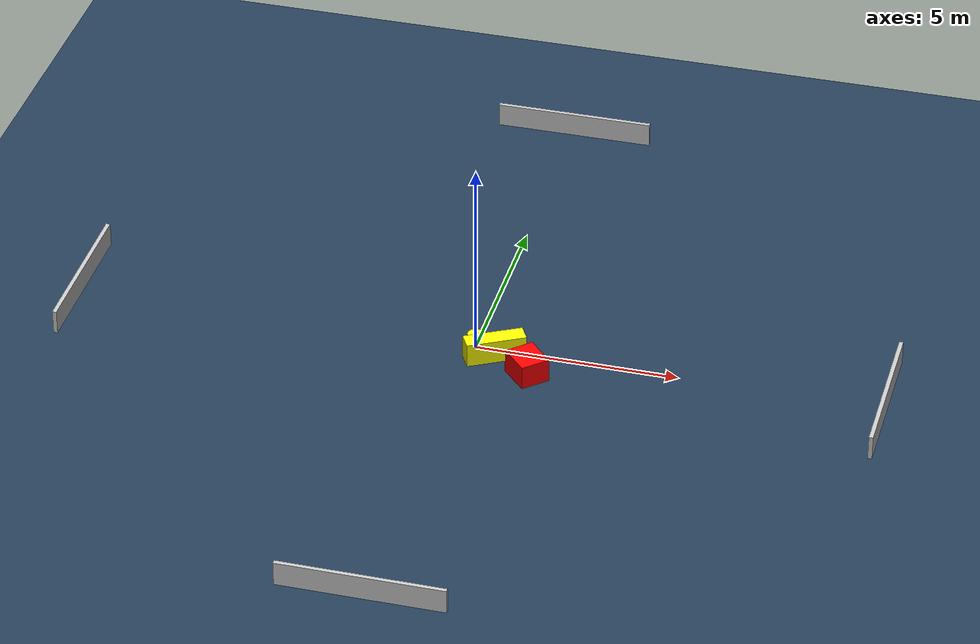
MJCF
<?xml version="1.0" ?>
<mujoco model="generated_environment">
  <option timestep="0.01" integrator="RK4" cone="elliptic"/>
  <default>
    <geom density="1"/>
  </default>
  <asset>
    <texture builtin="gradient" height="3072" name="skybox" rgb1="0.3 0.5 0.7" rgb2="0 0 0" type="skybox" width="512"/>
    <texture builtin="checker" height="300" name="groundplane" rgb1="0.2 0.3 0.4" rgb2="0.1 0.2 0.3" type="2d" width="300"/>
    <material name="groundplane" reflectance="0.2" texrepeat="5 5" texture="groundplane"/>
  </asset>
  <worldbody>
    <light dir="0 0 -1" directional="true" pos="0 0 1.5"/>
    <geom condim="3" friction="0.5 0.005 0.001" material="groundplane" name="floor" pos="0 0 0" size="0 0 0.05" type="plane"/>
    <body name="walls">
      <geom name="wall_1" condim="4" pos="-10.0 0.0 0.3" rgba="0.800000011920929 0.800000011920929 0.800000011920929 1.0" size="0.05 2.0 0.3" type="box"/>
      <geom name="wall_2" condim="4" pos="10.0 0.0 0.3" rgba="0.800000011920929 0.800000011920929 0.800000011920929 1.0" size="0.05 2.0 0.3" type="box"/>
      <geom name="wall_3" condim="4" pos="0.0 -10.0 0.3" rgba="0.800000011920929 0.800000011920929 0.800000011920929 1.0" size="2.0 0.05 0.3" type="box"/>
      <geom name="wall_4" condim="4" pos="0.0 10.0 0.3" rgba="0.800000011920929 0.800000011920929 0.800000011920929 1.0" size="2.0 0.05 0.3" type="box"/>
    </body>
    <body name="robot">
      <joint name="joint_x" type="slide" pos="0 0 0" axis="1 0 0"/>
      <joint name="joint_y" type="slide" pos="0 0 0" axis="0 1 0"/>
      <geom name="robot" type="cylinder" pos="0.0 0.0 0.2" size="0.2 0.2 0.0" mass="5.0" friction="1.0 0.005 0.0001" condim="4" rgba="1.0 1.0 0.0 1.0"/>
    </body>
    <body name="obstacle_1_movable">
      <geom name="obstacle_1_movable" condim="4" pos="0.5481951562733669 -0.2835945464707411 0.3" euler="0 0 28.713753436385694" friction="0.0 0.005 0.001" rgba="1.0 1.0 0.0 1.0" size="0.7388636819601411 0.21590519999393265 0.3" type="box" mass="0.1"/>
      <joint type="free"/>
    </body>
    <body name="obstacle_2_static">
      <geom name="obstacle_2_static" condim="4" pos="1.4877114878019233 -0.828257638358938 0.3" euler="0 0 222.99031673433433" friction="0.0 0.005 0.001" rgba="1.0 0.0 0.0 1.0" size="0.36730203329676037 0.4206397853509458 0.3" type="box"/>
    </body>
  </worldbody>
  <actuator>
    <motor name="actuator_x" joint="joint_x" gear="1" ctrlrange="-1 1"/>
    <motor name="actuator_y" joint="joint_y" gear="1" ctrlrange="-1 1"/>
  </actuator>
</mujoco>
